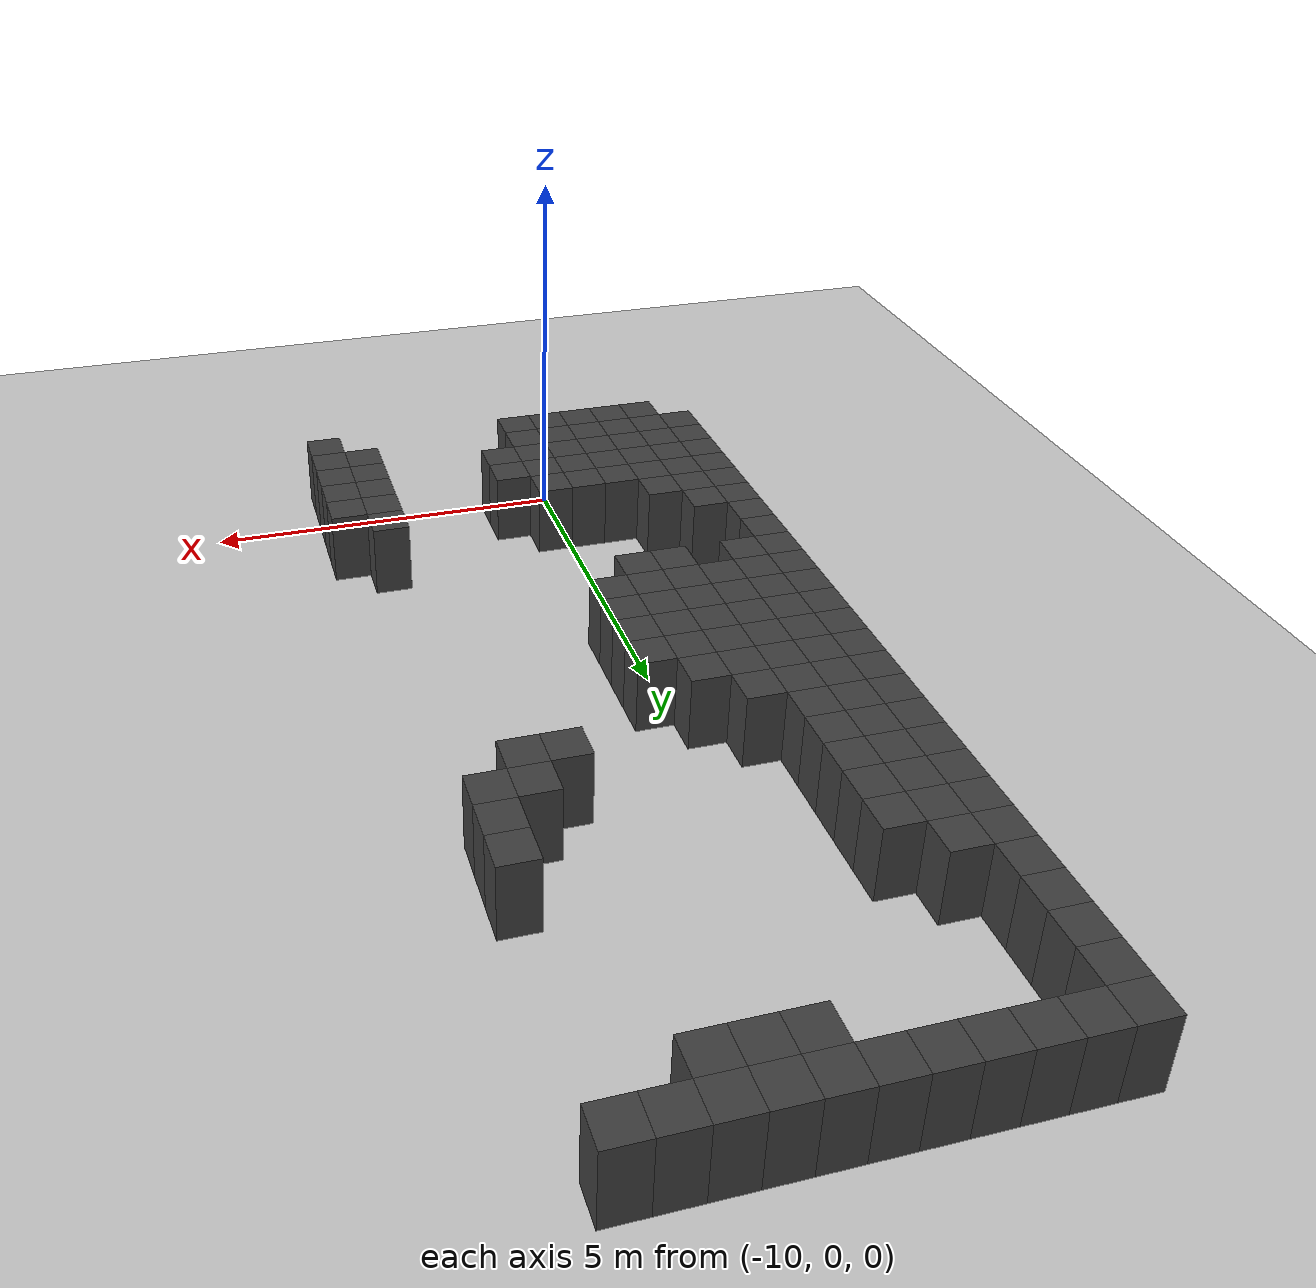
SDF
<sdf version="1.7">
 <world name="map_8843">
  <model name="ground_plane">
   <static>true</static>
   <link name="link">
    <collision name="collision">
     <geometry><plane><normal>0 0 1</normal><size>200 200</size></plane></geometry>
    </collision>
    <visual name="visual">
     <geometry><plane><normal>0 0 1</normal><size>200 200</size></plane></geometry>
     <material><ambient>0.8 0.8 0.8 1</ambient><diffuse>0.8 0.8 0.8 1</diffuse></material>
    </visual>
   </link>
  </model>
  <model name="maze_environment">
   <static>true</static>
   <link name="wall_0">
    <pose>-12.250 12.250 0.500 0 0 0</pose>
    <collision name="col"><geometry><box><size>0.5 0.5 1.0</size></box></geometry></collision>
    <visual name="vis">
     <geometry><box><size>0.5 0.5 1.0</size></box></geometry>
     <material><ambient>0.15 0.15 0.15 1</ambient><diffuse>0.25 0.25 0.25 1</diffuse></material>
    </visual>
   </link>
   <link name="wall_1">
    <pose>-11.750 12.250 0.500 0 0 0</pose>
    <collision name="col"><geometry><box><size>0.5 0.5 1.0</size></box></geometry></collision>
    <visual name="vis">
     <geometry><box><size>0.5 0.5 1.0</size></box></geometry>
     <material><ambient>0.15 0.15 0.15 1</ambient><diffuse>0.25 0.25 0.25 1</diffuse></material>
    </visual>
   </link>
   <link name="wall_2">
    <pose>-11.250 12.250 0.500 0 0 0</pose>
    <collision name="col"><geometry><box><size>0.5 0.5 1.0</size></box></geometry></collision>
    <visual name="vis">
     <geometry><box><size>0.5 0.5 1.0</size></box></geometry>
     <material><ambient>0.15 0.15 0.15 1</ambient><diffuse>0.25 0.25 0.25 1</diffuse></material>
    </visual>
   </link>
   <link name="wall_3">
    <pose>-10.750 12.250 0.500 0 0 0</pose>
    <collision name="col"><geometry><box><size>0.5 0.5 1.0</size></box></geometry></collision>
    <visual name="vis">
     <geometry><box><size>0.5 0.5 1.0</size></box></geometry>
     <material><ambient>0.15 0.15 0.15 1</ambient><diffuse>0.25 0.25 0.25 1</diffuse></material>
    </visual>
   </link>
   <link name="wall_4">
    <pose>-10.250 12.250 0.500 0 0 0</pose>
    <collision name="col"><geometry><box><size>0.5 0.5 1.0</size></box></geometry></collision>
    <visual name="vis">
     <geometry><box><size>0.5 0.5 1.0</size></box></geometry>
     <material><ambient>0.15 0.15 0.15 1</ambient><diffuse>0.25 0.25 0.25 1</diffuse></material>
    </visual>
   </link>
   <link name="wall_5">
    <pose>-9.750 12.250 0.500 0 0 0</pose>
    <collision name="col"><geometry><box><size>0.5 0.5 1.0</size></box></geometry></collision>
    <visual name="vis">
     <geometry><box><size>0.5 0.5 1.0</size></box></geometry>
     <material><ambient>0.15 0.15 0.15 1</ambient><diffuse>0.25 0.25 0.25 1</diffuse></material>
    </visual>
   </link>
   <link name="wall_6">
    <pose>-9.250 12.250 0.500 0 0 0</pose>
    <collision name="col"><geometry><box><size>0.5 0.5 1.0</size></box></geometry></collision>
    <visual name="vis">
     <geometry><box><size>0.5 0.5 1.0</size></box></geometry>
     <material><ambient>0.15 0.15 0.15 1</ambient><diffuse>0.25 0.25 0.25 1</diffuse></material>
    </visual>
   </link>
   <link name="wall_7">
    <pose>-8.750 12.250 0.500 0 0 0</pose>
    <collision name="col"><geometry><box><size>0.5 0.5 1.0</size></box></geometry></collision>
    <visual name="vis">
     <geometry><box><size>0.5 0.5 1.0</size></box></geometry>
     <material><ambient>0.15 0.15 0.15 1</ambient><diffuse>0.25 0.25 0.25 1</diffuse></material>
    </visual>
   </link>
   <link name="wall_8">
    <pose>-8.250 12.250 0.500 0 0 0</pose>
    <collision name="col"><geometry><box><size>0.5 0.5 1.0</size></box></geometry></collision>
    <visual name="vis">
     <geometry><box><size>0.5 0.5 1.0</size></box></geometry>
     <material><ambient>0.15 0.15 0.15 1</ambient><diffuse>0.25 0.25 0.25 1</diffuse></material>
    </visual>
   </link>
   <link name="wall_9">
    <pose>-7.750 12.250 0.500 0 0 0</pose>
    <collision name="col"><geometry><box><size>0.5 0.5 1.0</size></box></geometry></collision>
    <visual name="vis">
     <geometry><box><size>0.5 0.5 1.0</size></box></geometry>
     <material><ambient>0.15 0.15 0.15 1</ambient><diffuse>0.25 0.25 0.25 1</diffuse></material>
    </visual>
   </link>
   <link name="wall_10">
    <pose>-7.250 12.250 0.500 0 0 0</pose>
    <collision name="col"><geometry><box><size>0.5 0.5 1.0</size></box></geometry></collision>
    <visual name="vis">
     <geometry><box><size>0.5 0.5 1.0</size></box></geometry>
     <material><ambient>0.15 0.15 0.15 1</ambient><diffuse>0.25 0.25 0.25 1</diffuse></material>
    </visual>
   </link>
   <link name="wall_50">
    <pose>-12.250 11.750 0.500 0 0 0</pose>
    <collision name="col"><geometry><box><size>0.5 0.5 1.0</size></box></geometry></collision>
    <visual name="vis">
     <geometry><box><size>0.5 0.5 1.0</size></box></geometry>
     <material><ambient>0.15 0.15 0.15 1</ambient><diffuse>0.25 0.25 0.25 1</diffuse></material>
    </visual>
   </link>
   <link name="wall_51">
    <pose>-9.250 11.750 0.500 0 0 0</pose>
    <collision name="col"><geometry><box><size>0.5 0.5 1.0</size></box></geometry></collision>
    <visual name="vis">
     <geometry><box><size>0.5 0.5 1.0</size></box></geometry>
     <material><ambient>0.15 0.15 0.15 1</ambient><diffuse>0.25 0.25 0.25 1</diffuse></material>
    </visual>
   </link>
   <link name="wall_52">
    <pose>-8.750 11.750 0.500 0 0 0</pose>
    <collision name="col"><geometry><box><size>0.5 0.5 1.0</size></box></geometry></collision>
    <visual name="vis">
     <geometry><box><size>0.5 0.5 1.0</size></box></geometry>
     <material><ambient>0.15 0.15 0.15 1</ambient><diffuse>0.25 0.25 0.25 1</diffuse></material>
    </visual>
   </link>
   <link name="wall_53">
    <pose>-8.250 11.750 0.500 0 0 0</pose>
    <collision name="col"><geometry><box><size>0.5 0.5 1.0</size></box></geometry></collision>
    <visual name="vis">
     <geometry><box><size>0.5 0.5 1.0</size></box></geometry>
     <material><ambient>0.15 0.15 0.15 1</ambient><diffuse>0.25 0.25 0.25 1</diffuse></material>
    </visual>
   </link>
   <link name="wall_86">
    <pose>-12.250 11.250 0.500 0 0 0</pose>
    <collision name="col"><geometry><box><size>0.5 0.5 1.0</size></box></geometry></collision>
    <visual name="vis">
     <geometry><box><size>0.5 0.5 1.0</size></box></geometry>
     <material><ambient>0.15 0.15 0.15 1</ambient><diffuse>0.25 0.25 0.25 1</diffuse></material>
    </visual>
   </link>
   <link name="wall_106">
    <pose>-12.250 10.750 0.500 0 0 0</pose>
    <collision name="col"><geometry><box><size>0.5 0.5 1.0</size></box></geometry></collision>
    <visual name="vis">
     <geometry><box><size>0.5 0.5 1.0</size></box></geometry>
     <material><ambient>0.15 0.15 0.15 1</ambient><diffuse>0.25 0.25 0.25 1</diffuse></material>
    </visual>
   </link>
   <link name="wall_123">
    <pose>-12.250 10.250 0.500 0 0 0</pose>
    <collision name="col"><geometry><box><size>0.5 0.5 1.0</size></box></geometry></collision>
    <visual name="vis">
     <geometry><box><size>0.5 0.5 1.0</size></box></geometry>
     <material><ambient>0.15 0.15 0.15 1</ambient><diffuse>0.25 0.25 0.25 1</diffuse></material>
    </visual>
   </link>
   <link name="wall_142">
    <pose>-12.250 9.750 0.500 0 0 0</pose>
    <collision name="col"><geometry><box><size>0.5 0.5 1.0</size></box></geometry></collision>
    <visual name="vis">
     <geometry><box><size>0.5 0.5 1.0</size></box></geometry>
     <material><ambient>0.15 0.15 0.15 1</ambient><diffuse>0.25 0.25 0.25 1</diffuse></material>
    </visual>
   </link>
   <link name="wall_143">
    <pose>-11.750 9.750 0.500 0 0 0</pose>
    <collision name="col"><geometry><box><size>0.5 0.5 1.0</size></box></geometry></collision>
    <visual name="vis">
     <geometry><box><size>0.5 0.5 1.0</size></box></geometry>
     <material><ambient>0.15 0.15 0.15 1</ambient><diffuse>0.25 0.25 0.25 1</diffuse></material>
    </visual>
   </link>
   <link name="wall_167">
    <pose>-12.250 9.250 0.500 0 0 0</pose>
    <collision name="col"><geometry><box><size>0.5 0.5 1.0</size></box></geometry></collision>
    <visual name="vis">
     <geometry><box><size>0.5 0.5 1.0</size></box></geometry>
     <material><ambient>0.15 0.15 0.15 1</ambient><diffuse>0.25 0.25 0.25 1</diffuse></material>
    </visual>
   </link>
   <link name="wall_168">
    <pose>-11.750 9.250 0.500 0 0 0</pose>
    <collision name="col"><geometry><box><size>0.5 0.5 1.0</size></box></geometry></collision>
    <visual name="vis">
     <geometry><box><size>0.5 0.5 1.0</size></box></geometry>
     <material><ambient>0.15 0.15 0.15 1</ambient><diffuse>0.25 0.25 0.25 1</diffuse></material>
    </visual>
   </link>
   <link name="wall_169">
    <pose>-11.250 9.250 0.500 0 0 0</pose>
    <collision name="col"><geometry><box><size>0.5 0.5 1.0</size></box></geometry></collision>
    <visual name="vis">
     <geometry><box><size>0.5 0.5 1.0</size></box></geometry>
     <material><ambient>0.15 0.15 0.15 1</ambient><diffuse>0.25 0.25 0.25 1</diffuse></material>
    </visual>
   </link>
   <link name="wall_188">
    <pose>-12.250 8.750 0.500 0 0 0</pose>
    <collision name="col"><geometry><box><size>0.5 0.5 1.0</size></box></geometry></collision>
    <visual name="vis">
     <geometry><box><size>0.5 0.5 1.0</size></box></geometry>
     <material><ambient>0.15 0.15 0.15 1</ambient><diffuse>0.25 0.25 0.25 1</diffuse></material>
    </visual>
   </link>
   <link name="wall_189">
    <pose>-11.750 8.750 0.500 0 0 0</pose>
    <collision name="col"><geometry><box><size>0.5 0.5 1.0</size></box></geometry></collision>
    <visual name="vis">
     <geometry><box><size>0.5 0.5 1.0</size></box></geometry>
     <material><ambient>0.15 0.15 0.15 1</ambient><diffuse>0.25 0.25 0.25 1</diffuse></material>
    </visual>
   </link>
   <link name="wall_190">
    <pose>-11.250 8.750 0.500 0 0 0</pose>
    <collision name="col"><geometry><box><size>0.5 0.5 1.0</size></box></geometry></collision>
    <visual name="vis">
     <geometry><box><size>0.5 0.5 1.0</size></box></geometry>
     <material><ambient>0.15 0.15 0.15 1</ambient><diffuse>0.25 0.25 0.25 1</diffuse></material>
    </visual>
   </link>
   <link name="wall_191">
    <pose>-7.250 8.750 0.500 0 0 0</pose>
    <collision name="col"><geometry><box><size>0.5 0.5 1.0</size></box></geometry></collision>
    <visual name="vis">
     <geometry><box><size>0.5 0.5 1.0</size></box></geometry>
     <material><ambient>0.15 0.15 0.15 1</ambient><diffuse>0.25 0.25 0.25 1</diffuse></material>
    </visual>
   </link>
   <link name="wall_209">
    <pose>-12.250 8.250 0.500 0 0 0</pose>
    <collision name="col"><geometry><box><size>0.5 0.5 1.0</size></box></geometry></collision>
    <visual name="vis">
     <geometry><box><size>0.5 0.5 1.0</size></box></geometry>
     <material><ambient>0.15 0.15 0.15 1</ambient><diffuse>0.25 0.25 0.25 1</diffuse></material>
    </visual>
   </link>
   <link name="wall_210">
    <pose>-11.750 8.250 0.500 0 0 0</pose>
    <collision name="col"><geometry><box><size>0.5 0.5 1.0</size></box></geometry></collision>
    <visual name="vis">
     <geometry><box><size>0.5 0.5 1.0</size></box></geometry>
     <material><ambient>0.15 0.15 0.15 1</ambient><diffuse>0.25 0.25 0.25 1</diffuse></material>
    </visual>
   </link>
   <link name="wall_211">
    <pose>-11.250 8.250 0.500 0 0 0</pose>
    <collision name="col"><geometry><box><size>0.5 0.5 1.0</size></box></geometry></collision>
    <visual name="vis">
     <geometry><box><size>0.5 0.5 1.0</size></box></geometry>
     <material><ambient>0.15 0.15 0.15 1</ambient><diffuse>0.25 0.25 0.25 1</diffuse></material>
    </visual>
   </link>
   <link name="wall_212">
    <pose>-7.250 8.250 0.500 0 0 0</pose>
    <collision name="col"><geometry><box><size>0.5 0.5 1.0</size></box></geometry></collision>
    <visual name="vis">
     <geometry><box><size>0.5 0.5 1.0</size></box></geometry>
     <material><ambient>0.15 0.15 0.15 1</ambient><diffuse>0.25 0.25 0.25 1</diffuse></material>
    </visual>
   </link>
   <link name="wall_225">
    <pose>-12.250 7.750 0.500 0 0 0</pose>
    <collision name="col"><geometry><box><size>0.5 0.5 1.0</size></box></geometry></collision>
    <visual name="vis">
     <geometry><box><size>0.5 0.5 1.0</size></box></geometry>
     <material><ambient>0.15 0.15 0.15 1</ambient><diffuse>0.25 0.25 0.25 1</diffuse></material>
    </visual>
   </link>
   <link name="wall_226">
    <pose>-11.750 7.750 0.500 0 0 0</pose>
    <collision name="col"><geometry><box><size>0.5 0.5 1.0</size></box></geometry></collision>
    <visual name="vis">
     <geometry><box><size>0.5 0.5 1.0</size></box></geometry>
     <material><ambient>0.15 0.15 0.15 1</ambient><diffuse>0.25 0.25 0.25 1</diffuse></material>
    </visual>
   </link>
   <link name="wall_227">
    <pose>-11.250 7.750 0.500 0 0 0</pose>
    <collision name="col"><geometry><box><size>0.5 0.5 1.0</size></box></geometry></collision>
    <visual name="vis">
     <geometry><box><size>0.5 0.5 1.0</size></box></geometry>
     <material><ambient>0.15 0.15 0.15 1</ambient><diffuse>0.25 0.25 0.25 1</diffuse></material>
    </visual>
   </link>
   <link name="wall_228">
    <pose>-7.750 7.750 0.500 0 0 0</pose>
    <collision name="col"><geometry><box><size>0.5 0.5 1.0</size></box></geometry></collision>
    <visual name="vis">
     <geometry><box><size>0.5 0.5 1.0</size></box></geometry>
     <material><ambient>0.15 0.15 0.15 1</ambient><diffuse>0.25 0.25 0.25 1</diffuse></material>
    </visual>
   </link>
   <link name="wall_229">
    <pose>-7.250 7.750 0.500 0 0 0</pose>
    <collision name="col"><geometry><box><size>0.5 0.5 1.0</size></box></geometry></collision>
    <visual name="vis">
     <geometry><box><size>0.5 0.5 1.0</size></box></geometry>
     <material><ambient>0.15 0.15 0.15 1</ambient><diffuse>0.25 0.25 0.25 1</diffuse></material>
    </visual>
   </link>
   <link name="wall_243">
    <pose>-12.250 7.250 0.500 0 0 0</pose>
    <collision name="col"><geometry><box><size>0.5 0.5 1.0</size></box></geometry></collision>
    <visual name="vis">
     <geometry><box><size>0.5 0.5 1.0</size></box></geometry>
     <material><ambient>0.15 0.15 0.15 1</ambient><diffuse>0.25 0.25 0.25 1</diffuse></material>
    </visual>
   </link>
   <link name="wall_244">
    <pose>-11.750 7.250 0.500 0 0 0</pose>
    <collision name="col"><geometry><box><size>0.5 0.5 1.0</size></box></geometry></collision>
    <visual name="vis">
     <geometry><box><size>0.5 0.5 1.0</size></box></geometry>
     <material><ambient>0.15 0.15 0.15 1</ambient><diffuse>0.25 0.25 0.25 1</diffuse></material>
    </visual>
   </link>
   <link name="wall_245">
    <pose>-11.250 7.250 0.500 0 0 0</pose>
    <collision name="col"><geometry><box><size>0.5 0.5 1.0</size></box></geometry></collision>
    <visual name="vis">
     <geometry><box><size>0.5 0.5 1.0</size></box></geometry>
     <material><ambient>0.15 0.15 0.15 1</ambient><diffuse>0.25 0.25 0.25 1</diffuse></material>
    </visual>
   </link>
   <link name="wall_246">
    <pose>-8.250 7.250 0.500 0 0 0</pose>
    <collision name="col"><geometry><box><size>0.5 0.5 1.0</size></box></geometry></collision>
    <visual name="vis">
     <geometry><box><size>0.5 0.5 1.0</size></box></geometry>
     <material><ambient>0.15 0.15 0.15 1</ambient><diffuse>0.25 0.25 0.25 1</diffuse></material>
    </visual>
   </link>
   <link name="wall_247">
    <pose>-7.750 7.250 0.500 0 0 0</pose>
    <collision name="col"><geometry><box><size>0.5 0.5 1.0</size></box></geometry></collision>
    <visual name="vis">
     <geometry><box><size>0.5 0.5 1.0</size></box></geometry>
     <material><ambient>0.15 0.15 0.15 1</ambient><diffuse>0.25 0.25 0.25 1</diffuse></material>
    </visual>
   </link>
   <link name="wall_259">
    <pose>-12.250 6.750 0.500 0 0 0</pose>
    <collision name="col"><geometry><box><size>0.5 0.5 1.0</size></box></geometry></collision>
    <visual name="vis">
     <geometry><box><size>0.5 0.5 1.0</size></box></geometry>
     <material><ambient>0.15 0.15 0.15 1</ambient><diffuse>0.25 0.25 0.25 1</diffuse></material>
    </visual>
   </link>
   <link name="wall_260">
    <pose>-11.750 6.750 0.500 0 0 0</pose>
    <collision name="col"><geometry><box><size>0.5 0.5 1.0</size></box></geometry></collision>
    <visual name="vis">
     <geometry><box><size>0.5 0.5 1.0</size></box></geometry>
     <material><ambient>0.15 0.15 0.15 1</ambient><diffuse>0.25 0.25 0.25 1</diffuse></material>
    </visual>
   </link>
   <link name="wall_261">
    <pose>-11.250 6.750 0.500 0 0 0</pose>
    <collision name="col"><geometry><box><size>0.5 0.5 1.0</size></box></geometry></collision>
    <visual name="vis">
     <geometry><box><size>0.5 0.5 1.0</size></box></geometry>
     <material><ambient>0.15 0.15 0.15 1</ambient><diffuse>0.25 0.25 0.25 1</diffuse></material>
    </visual>
   </link>
   <link name="wall_262">
    <pose>-10.750 6.750 0.500 0 0 0</pose>
    <collision name="col"><geometry><box><size>0.5 0.5 1.0</size></box></geometry></collision>
    <visual name="vis">
     <geometry><box><size>0.5 0.5 1.0</size></box></geometry>
     <material><ambient>0.15 0.15 0.15 1</ambient><diffuse>0.25 0.25 0.25 1</diffuse></material>
    </visual>
   </link>
   <link name="wall_277">
    <pose>-12.250 6.250 0.500 0 0 0</pose>
    <collision name="col"><geometry><box><size>0.5 0.5 1.0</size></box></geometry></collision>
    <visual name="vis">
     <geometry><box><size>0.5 0.5 1.0</size></box></geometry>
     <material><ambient>0.15 0.15 0.15 1</ambient><diffuse>0.25 0.25 0.25 1</diffuse></material>
    </visual>
   </link>
   <link name="wall_278">
    <pose>-11.750 6.250 0.500 0 0 0</pose>
    <collision name="col"><geometry><box><size>0.5 0.5 1.0</size></box></geometry></collision>
    <visual name="vis">
     <geometry><box><size>0.5 0.5 1.0</size></box></geometry>
     <material><ambient>0.15 0.15 0.15 1</ambient><diffuse>0.25 0.25 0.25 1</diffuse></material>
    </visual>
   </link>
   <link name="wall_279">
    <pose>-11.250 6.250 0.500 0 0 0</pose>
    <collision name="col"><geometry><box><size>0.5 0.5 1.0</size></box></geometry></collision>
    <visual name="vis">
     <geometry><box><size>0.5 0.5 1.0</size></box></geometry>
     <material><ambient>0.15 0.15 0.15 1</ambient><diffuse>0.25 0.25 0.25 1</diffuse></material>
    </visual>
   </link>
   <link name="wall_280">
    <pose>-10.750 6.250 0.500 0 0 0</pose>
    <collision name="col"><geometry><box><size>0.5 0.5 1.0</size></box></geometry></collision>
    <visual name="vis">
     <geometry><box><size>0.5 0.5 1.0</size></box></geometry>
     <material><ambient>0.15 0.15 0.15 1</ambient><diffuse>0.25 0.25 0.25 1</diffuse></material>
    </visual>
   </link>
   <link name="wall_281">
    <pose>-10.250 6.250 0.500 0 0 0</pose>
    <collision name="col"><geometry><box><size>0.5 0.5 1.0</size></box></geometry></collision>
    <visual name="vis">
     <geometry><box><size>0.5 0.5 1.0</size></box></geometry>
     <material><ambient>0.15 0.15 0.15 1</ambient><diffuse>0.25 0.25 0.25 1</diffuse></material>
    </visual>
   </link>
   <link name="wall_299">
    <pose>-12.250 5.750 0.500 0 0 0</pose>
    <collision name="col"><geometry><box><size>0.5 0.5 1.0</size></box></geometry></collision>
    <visual name="vis">
     <geometry><box><size>0.5 0.5 1.0</size></box></geometry>
     <material><ambient>0.15 0.15 0.15 1</ambient><diffuse>0.25 0.25 0.25 1</diffuse></material>
    </visual>
   </link>
   <link name="wall_300">
    <pose>-11.750 5.750 0.500 0 0 0</pose>
    <collision name="col"><geometry><box><size>0.5 0.5 1.0</size></box></geometry></collision>
    <visual name="vis">
     <geometry><box><size>0.5 0.5 1.0</size></box></geometry>
     <material><ambient>0.15 0.15 0.15 1</ambient><diffuse>0.25 0.25 0.25 1</diffuse></material>
    </visual>
   </link>
   <link name="wall_301">
    <pose>-11.250 5.750 0.500 0 0 0</pose>
    <collision name="col"><geometry><box><size>0.5 0.5 1.0</size></box></geometry></collision>
    <visual name="vis">
     <geometry><box><size>0.5 0.5 1.0</size></box></geometry>
     <material><ambient>0.15 0.15 0.15 1</ambient><diffuse>0.25 0.25 0.25 1</diffuse></material>
    </visual>
   </link>
   <link name="wall_302">
    <pose>-10.750 5.750 0.500 0 0 0</pose>
    <collision name="col"><geometry><box><size>0.5 0.5 1.0</size></box></geometry></collision>
    <visual name="vis">
     <geometry><box><size>0.5 0.5 1.0</size></box></geometry>
     <material><ambient>0.15 0.15 0.15 1</ambient><diffuse>0.25 0.25 0.25 1</diffuse></material>
    </visual>
   </link>
   <link name="wall_303">
    <pose>-10.250 5.750 0.500 0 0 0</pose>
    <collision name="col"><geometry><box><size>0.5 0.5 1.0</size></box></geometry></collision>
    <visual name="vis">
     <geometry><box><size>0.5 0.5 1.0</size></box></geometry>
     <material><ambient>0.15 0.15 0.15 1</ambient><diffuse>0.25 0.25 0.25 1</diffuse></material>
    </visual>
   </link>
   <link name="wall_304">
    <pose>-9.750 5.750 0.500 0 0 0</pose>
    <collision name="col"><geometry><box><size>0.5 0.5 1.0</size></box></geometry></collision>
    <visual name="vis">
     <geometry><box><size>0.5 0.5 1.0</size></box></geometry>
     <material><ambient>0.15 0.15 0.15 1</ambient><diffuse>0.25 0.25 0.25 1</diffuse></material>
    </visual>
   </link>
   <link name="wall_318">
    <pose>-12.250 5.250 0.500 0 0 0</pose>
    <collision name="col"><geometry><box><size>0.5 0.5 1.0</size></box></geometry></collision>
    <visual name="vis">
     <geometry><box><size>0.5 0.5 1.0</size></box></geometry>
     <material><ambient>0.15 0.15 0.15 1</ambient><diffuse>0.25 0.25 0.25 1</diffuse></material>
    </visual>
   </link>
   <link name="wall_319">
    <pose>-11.750 5.250 0.500 0 0 0</pose>
    <collision name="col"><geometry><box><size>0.5 0.5 1.0</size></box></geometry></collision>
    <visual name="vis">
     <geometry><box><size>0.5 0.5 1.0</size></box></geometry>
     <material><ambient>0.15 0.15 0.15 1</ambient><diffuse>0.25 0.25 0.25 1</diffuse></material>
    </visual>
   </link>
   <link name="wall_320">
    <pose>-11.250 5.250 0.500 0 0 0</pose>
    <collision name="col"><geometry><box><size>0.5 0.5 1.0</size></box></geometry></collision>
    <visual name="vis">
     <geometry><box><size>0.5 0.5 1.0</size></box></geometry>
     <material><ambient>0.15 0.15 0.15 1</ambient><diffuse>0.25 0.25 0.25 1</diffuse></material>
    </visual>
   </link>
   <link name="wall_321">
    <pose>-10.750 5.250 0.500 0 0 0</pose>
    <collision name="col"><geometry><box><size>0.5 0.5 1.0</size></box></geometry></collision>
    <visual name="vis">
     <geometry><box><size>0.5 0.5 1.0</size></box></geometry>
     <material><ambient>0.15 0.15 0.15 1</ambient><diffuse>0.25 0.25 0.25 1</diffuse></material>
    </visual>
   </link>
   <link name="wall_322">
    <pose>-10.250 5.250 0.500 0 0 0</pose>
    <collision name="col"><geometry><box><size>0.5 0.5 1.0</size></box></geometry></collision>
    <visual name="vis">
     <geometry><box><size>0.5 0.5 1.0</size></box></geometry>
     <material><ambient>0.15 0.15 0.15 1</ambient><diffuse>0.25 0.25 0.25 1</diffuse></material>
    </visual>
   </link>
   <link name="wall_323">
    <pose>-9.750 5.250 0.500 0 0 0</pose>
    <collision name="col"><geometry><box><size>0.5 0.5 1.0</size></box></geometry></collision>
    <visual name="vis">
     <geometry><box><size>0.5 0.5 1.0</size></box></geometry>
     <material><ambient>0.15 0.15 0.15 1</ambient><diffuse>0.25 0.25 0.25 1</diffuse></material>
    </visual>
   </link>
   <link name="wall_330">
    <pose>-12.250 4.750 0.500 0 0 0</pose>
    <collision name="col"><geometry><box><size>0.5 0.5 1.0</size></box></geometry></collision>
    <visual name="vis">
     <geometry><box><size>0.5 0.5 1.0</size></box></geometry>
     <material><ambient>0.15 0.15 0.15 1</ambient><diffuse>0.25 0.25 0.25 1</diffuse></material>
    </visual>
   </link>
   <link name="wall_331">
    <pose>-11.750 4.750 0.500 0 0 0</pose>
    <collision name="col"><geometry><box><size>0.5 0.5 1.0</size></box></geometry></collision>
    <visual name="vis">
     <geometry><box><size>0.5 0.5 1.0</size></box></geometry>
     <material><ambient>0.15 0.15 0.15 1</ambient><diffuse>0.25 0.25 0.25 1</diffuse></material>
    </visual>
   </link>
   <link name="wall_332">
    <pose>-11.250 4.750 0.500 0 0 0</pose>
    <collision name="col"><geometry><box><size>0.5 0.5 1.0</size></box></geometry></collision>
    <visual name="vis">
     <geometry><box><size>0.5 0.5 1.0</size></box></geometry>
     <material><ambient>0.15 0.15 0.15 1</ambient><diffuse>0.25 0.25 0.25 1</diffuse></material>
    </visual>
   </link>
   <link name="wall_333">
    <pose>-10.750 4.750 0.500 0 0 0</pose>
    <collision name="col"><geometry><box><size>0.5 0.5 1.0</size></box></geometry></collision>
    <visual name="vis">
     <geometry><box><size>0.5 0.5 1.0</size></box></geometry>
     <material><ambient>0.15 0.15 0.15 1</ambient><diffuse>0.25 0.25 0.25 1</diffuse></material>
    </visual>
   </link>
   <link name="wall_334">
    <pose>-10.250 4.750 0.500 0 0 0</pose>
    <collision name="col"><geometry><box><size>0.5 0.5 1.0</size></box></geometry></collision>
    <visual name="vis">
     <geometry><box><size>0.5 0.5 1.0</size></box></geometry>
     <material><ambient>0.15 0.15 0.15 1</ambient><diffuse>0.25 0.25 0.25 1</diffuse></material>
    </visual>
   </link>
   <link name="wall_335">
    <pose>-9.750 4.750 0.500 0 0 0</pose>
    <collision name="col"><geometry><box><size>0.5 0.5 1.0</size></box></geometry></collision>
    <visual name="vis">
     <geometry><box><size>0.5 0.5 1.0</size></box></geometry>
     <material><ambient>0.15 0.15 0.15 1</ambient><diffuse>0.25 0.25 0.25 1</diffuse></material>
    </visual>
   </link>
   <link name="wall_343">
    <pose>-12.250 4.250 0.500 0 0 0</pose>
    <collision name="col"><geometry><box><size>0.5 0.5 1.0</size></box></geometry></collision>
    <visual name="vis">
     <geometry><box><size>0.5 0.5 1.0</size></box></geometry>
     <material><ambient>0.15 0.15 0.15 1</ambient><diffuse>0.25 0.25 0.25 1</diffuse></material>
    </visual>
   </link>
   <link name="wall_344">
    <pose>-11.750 4.250 0.500 0 0 0</pose>
    <collision name="col"><geometry><box><size>0.5 0.5 1.0</size></box></geometry></collision>
    <visual name="vis">
     <geometry><box><size>0.5 0.5 1.0</size></box></geometry>
     <material><ambient>0.15 0.15 0.15 1</ambient><diffuse>0.25 0.25 0.25 1</diffuse></material>
    </visual>
   </link>
   <link name="wall_345">
    <pose>-11.250 4.250 0.500 0 0 0</pose>
    <collision name="col"><geometry><box><size>0.5 0.5 1.0</size></box></geometry></collision>
    <visual name="vis">
     <geometry><box><size>0.5 0.5 1.0</size></box></geometry>
     <material><ambient>0.15 0.15 0.15 1</ambient><diffuse>0.25 0.25 0.25 1</diffuse></material>
    </visual>
   </link>
   <link name="wall_346">
    <pose>-10.750 4.250 0.500 0 0 0</pose>
    <collision name="col"><geometry><box><size>0.5 0.5 1.0</size></box></geometry></collision>
    <visual name="vis">
     <geometry><box><size>0.5 0.5 1.0</size></box></geometry>
     <material><ambient>0.15 0.15 0.15 1</ambient><diffuse>0.25 0.25 0.25 1</diffuse></material>
    </visual>
   </link>
   <link name="wall_347">
    <pose>-10.250 4.250 0.500 0 0 0</pose>
    <collision name="col"><geometry><box><size>0.5 0.5 1.0</size></box></geometry></collision>
    <visual name="vis">
     <geometry><box><size>0.5 0.5 1.0</size></box></geometry>
     <material><ambient>0.15 0.15 0.15 1</ambient><diffuse>0.25 0.25 0.25 1</diffuse></material>
    </visual>
   </link>
   <link name="wall_348">
    <pose>-9.750 4.250 0.500 0 0 0</pose>
    <collision name="col"><geometry><box><size>0.5 0.5 1.0</size></box></geometry></collision>
    <visual name="vis">
     <geometry><box><size>0.5 0.5 1.0</size></box></geometry>
     <material><ambient>0.15 0.15 0.15 1</ambient><diffuse>0.25 0.25 0.25 1</diffuse></material>
    </visual>
   </link>
   <link name="wall_355">
    <pose>-12.250 3.750 0.500 0 0 0</pose>
    <collision name="col"><geometry><box><size>0.5 0.5 1.0</size></box></geometry></collision>
    <visual name="vis">
     <geometry><box><size>0.5 0.5 1.0</size></box></geometry>
     <material><ambient>0.15 0.15 0.15 1</ambient><diffuse>0.25 0.25 0.25 1</diffuse></material>
    </visual>
   </link>
   <link name="wall_356">
    <pose>-11.750 3.750 0.500 0 0 0</pose>
    <collision name="col"><geometry><box><size>0.5 0.5 1.0</size></box></geometry></collision>
    <visual name="vis">
     <geometry><box><size>0.5 0.5 1.0</size></box></geometry>
     <material><ambient>0.15 0.15 0.15 1</ambient><diffuse>0.25 0.25 0.25 1</diffuse></material>
    </visual>
   </link>
   <link name="wall_357">
    <pose>-10.750 3.750 0.500 0 0 0</pose>
    <collision name="col"><geometry><box><size>0.5 0.5 1.0</size></box></geometry></collision>
    <visual name="vis">
     <geometry><box><size>0.5 0.5 1.0</size></box></geometry>
     <material><ambient>0.15 0.15 0.15 1</ambient><diffuse>0.25 0.25 0.25 1</diffuse></material>
    </visual>
   </link>
   <link name="wall_358">
    <pose>-10.250 3.750 0.500 0 0 0</pose>
    <collision name="col"><geometry><box><size>0.5 0.5 1.0</size></box></geometry></collision>
    <visual name="vis">
     <geometry><box><size>0.5 0.5 1.0</size></box></geometry>
     <material><ambient>0.15 0.15 0.15 1</ambient><diffuse>0.25 0.25 0.25 1</diffuse></material>
    </visual>
   </link>
   <link name="wall_369">
    <pose>-12.250 3.250 0.500 0 0 0</pose>
    <collision name="col"><geometry><box><size>0.5 0.5 1.0</size></box></geometry></collision>
    <visual name="vis">
     <geometry><box><size>0.5 0.5 1.0</size></box></geometry>
     <material><ambient>0.15 0.15 0.15 1</ambient><diffuse>0.25 0.25 0.25 1</diffuse></material>
    </visual>
   </link>
   <link name="wall_381">
    <pose>-12.250 2.750 0.500 0 0 0</pose>
    <collision name="col"><geometry><box><size>0.5 0.5 1.0</size></box></geometry></collision>
    <visual name="vis">
     <geometry><box><size>0.5 0.5 1.0</size></box></geometry>
     <material><ambient>0.15 0.15 0.15 1</ambient><diffuse>0.25 0.25 0.25 1</diffuse></material>
    </visual>
   </link>
   <link name="wall_395">
    <pose>-12.250 2.250 0.500 0 0 0</pose>
    <collision name="col"><geometry><box><size>0.5 0.5 1.0</size></box></geometry></collision>
    <visual name="vis">
     <geometry><box><size>0.5 0.5 1.0</size></box></geometry>
     <material><ambient>0.15 0.15 0.15 1</ambient><diffuse>0.25 0.25 0.25 1</diffuse></material>
    </visual>
   </link>
   <link name="wall_396">
    <pose>-11.750 2.250 0.500 0 0 0</pose>
    <collision name="col"><geometry><box><size>0.5 0.5 1.0</size></box></geometry></collision>
    <visual name="vis">
     <geometry><box><size>0.5 0.5 1.0</size></box></geometry>
     <material><ambient>0.15 0.15 0.15 1</ambient><diffuse>0.25 0.25 0.25 1</diffuse></material>
    </visual>
   </link>
   <link name="wall_410">
    <pose>-12.250 1.750 0.500 0 0 0</pose>
    <collision name="col"><geometry><box><size>0.5 0.5 1.0</size></box></geometry></collision>
    <visual name="vis">
     <geometry><box><size>0.5 0.5 1.0</size></box></geometry>
     <material><ambient>0.15 0.15 0.15 1</ambient><diffuse>0.25 0.25 0.25 1</diffuse></material>
    </visual>
   </link>
   <link name="wall_411">
    <pose>-11.750 1.750 0.500 0 0 0</pose>
    <collision name="col"><geometry><box><size>0.5 0.5 1.0</size></box></geometry></collision>
    <visual name="vis">
     <geometry><box><size>0.5 0.5 1.0</size></box></geometry>
     <material><ambient>0.15 0.15 0.15 1</ambient><diffuse>0.25 0.25 0.25 1</diffuse></material>
    </visual>
   </link>
   <link name="wall_412">
    <pose>-11.250 1.750 0.500 0 0 0</pose>
    <collision name="col"><geometry><box><size>0.5 0.5 1.0</size></box></geometry></collision>
    <visual name="vis">
     <geometry><box><size>0.5 0.5 1.0</size></box></geometry>
     <material><ambient>0.15 0.15 0.15 1</ambient><diffuse>0.25 0.25 0.25 1</diffuse></material>
    </visual>
   </link>
   <link name="wall_413">
    <pose>-7.250 1.750 0.500 0 0 0</pose>
    <collision name="col"><geometry><box><size>0.5 0.5 1.0</size></box></geometry></collision>
    <visual name="vis">
     <geometry><box><size>0.5 0.5 1.0</size></box></geometry>
     <material><ambient>0.15 0.15 0.15 1</ambient><diffuse>0.25 0.25 0.25 1</diffuse></material>
    </visual>
   </link>
   <link name="wall_428">
    <pose>-12.250 1.250 0.500 0 0 0</pose>
    <collision name="col"><geometry><box><size>0.5 0.5 1.0</size></box></geometry></collision>
    <visual name="vis">
     <geometry><box><size>0.5 0.5 1.0</size></box></geometry>
     <material><ambient>0.15 0.15 0.15 1</ambient><diffuse>0.25 0.25 0.25 1</diffuse></material>
    </visual>
   </link>
   <link name="wall_429">
    <pose>-11.750 1.250 0.500 0 0 0</pose>
    <collision name="col"><geometry><box><size>0.5 0.5 1.0</size></box></geometry></collision>
    <visual name="vis">
     <geometry><box><size>0.5 0.5 1.0</size></box></geometry>
     <material><ambient>0.15 0.15 0.15 1</ambient><diffuse>0.25 0.25 0.25 1</diffuse></material>
    </visual>
   </link>
   <link name="wall_430">
    <pose>-11.250 1.250 0.500 0 0 0</pose>
    <collision name="col"><geometry><box><size>0.5 0.5 1.0</size></box></geometry></collision>
    <visual name="vis">
     <geometry><box><size>0.5 0.5 1.0</size></box></geometry>
     <material><ambient>0.15 0.15 0.15 1</ambient><diffuse>0.25 0.25 0.25 1</diffuse></material>
    </visual>
   </link>
   <link name="wall_431">
    <pose>-10.750 1.250 0.500 0 0 0</pose>
    <collision name="col"><geometry><box><size>0.5 0.5 1.0</size></box></geometry></collision>
    <visual name="vis">
     <geometry><box><size>0.5 0.5 1.0</size></box></geometry>
     <material><ambient>0.15 0.15 0.15 1</ambient><diffuse>0.25 0.25 0.25 1</diffuse></material>
    </visual>
   </link>
   <link name="wall_432">
    <pose>-10.250 1.250 0.500 0 0 0</pose>
    <collision name="col"><geometry><box><size>0.5 0.5 1.0</size></box></geometry></collision>
    <visual name="vis">
     <geometry><box><size>0.5 0.5 1.0</size></box></geometry>
     <material><ambient>0.15 0.15 0.15 1</ambient><diffuse>0.25 0.25 0.25 1</diffuse></material>
    </visual>
   </link>
   <link name="wall_433">
    <pose>-9.750 1.250 0.500 0 0 0</pose>
    <collision name="col"><geometry><box><size>0.5 0.5 1.0</size></box></geometry></collision>
    <visual name="vis">
     <geometry><box><size>0.5 0.5 1.0</size></box></geometry>
     <material><ambient>0.15 0.15 0.15 1</ambient><diffuse>0.25 0.25 0.25 1</diffuse></material>
    </visual>
   </link>
   <link name="wall_434">
    <pose>-7.250 1.250 0.500 0 0 0</pose>
    <collision name="col"><geometry><box><size>0.5 0.5 1.0</size></box></geometry></collision>
    <visual name="vis">
     <geometry><box><size>0.5 0.5 1.0</size></box></geometry>
     <material><ambient>0.15 0.15 0.15 1</ambient><diffuse>0.25 0.25 0.25 1</diffuse></material>
    </visual>
   </link>
   <link name="wall_435">
    <pose>-6.750 1.250 0.500 0 0 0</pose>
    <collision name="col"><geometry><box><size>0.5 0.5 1.0</size></box></geometry></collision>
    <visual name="vis">
     <geometry><box><size>0.5 0.5 1.0</size></box></geometry>
     <material><ambient>0.15 0.15 0.15 1</ambient><diffuse>0.25 0.25 0.25 1</diffuse></material>
    </visual>
   </link>
   <link name="wall_451">
    <pose>-12.250 0.750 0.500 0 0 0</pose>
    <collision name="col"><geometry><box><size>0.5 0.5 1.0</size></box></geometry></collision>
    <visual name="vis">
     <geometry><box><size>0.5 0.5 1.0</size></box></geometry>
     <material><ambient>0.15 0.15 0.15 1</ambient><diffuse>0.25 0.25 0.25 1</diffuse></material>
    </visual>
   </link>
   <link name="wall_452">
    <pose>-11.750 0.750 0.500 0 0 0</pose>
    <collision name="col"><geometry><box><size>0.5 0.5 1.0</size></box></geometry></collision>
    <visual name="vis">
     <geometry><box><size>0.5 0.5 1.0</size></box></geometry>
     <material><ambient>0.15 0.15 0.15 1</ambient><diffuse>0.25 0.25 0.25 1</diffuse></material>
    </visual>
   </link>
   <link name="wall_453">
    <pose>-11.250 0.750 0.500 0 0 0</pose>
    <collision name="col"><geometry><box><size>0.5 0.5 1.0</size></box></geometry></collision>
    <visual name="vis">
     <geometry><box><size>0.5 0.5 1.0</size></box></geometry>
     <material><ambient>0.15 0.15 0.15 1</ambient><diffuse>0.25 0.25 0.25 1</diffuse></material>
    </visual>
   </link>
   <link name="wall_454">
    <pose>-10.750 0.750 0.500 0 0 0</pose>
    <collision name="col"><geometry><box><size>0.5 0.5 1.0</size></box></geometry></collision>
    <visual name="vis">
     <geometry><box><size>0.5 0.5 1.0</size></box></geometry>
     <material><ambient>0.15 0.15 0.15 1</ambient><diffuse>0.25 0.25 0.25 1</diffuse></material>
    </visual>
   </link>
   <link name="wall_455">
    <pose>-10.250 0.750 0.500 0 0 0</pose>
    <collision name="col"><geometry><box><size>0.5 0.5 1.0</size></box></geometry></collision>
    <visual name="vis">
     <geometry><box><size>0.5 0.5 1.0</size></box></geometry>
     <material><ambient>0.15 0.15 0.15 1</ambient><diffuse>0.25 0.25 0.25 1</diffuse></material>
    </visual>
   </link>
   <link name="wall_456">
    <pose>-9.750 0.750 0.500 0 0 0</pose>
    <collision name="col"><geometry><box><size>0.5 0.5 1.0</size></box></geometry></collision>
    <visual name="vis">
     <geometry><box><size>0.5 0.5 1.0</size></box></geometry>
     <material><ambient>0.15 0.15 0.15 1</ambient><diffuse>0.25 0.25 0.25 1</diffuse></material>
    </visual>
   </link>
   <link name="wall_457">
    <pose>-9.250 0.750 0.500 0 0 0</pose>
    <collision name="col"><geometry><box><size>0.5 0.5 1.0</size></box></geometry></collision>
    <visual name="vis">
     <geometry><box><size>0.5 0.5 1.0</size></box></geometry>
     <material><ambient>0.15 0.15 0.15 1</ambient><diffuse>0.25 0.25 0.25 1</diffuse></material>
    </visual>
   </link>
   <link name="wall_458">
    <pose>-7.250 0.750 0.500 0 0 0</pose>
    <collision name="col"><geometry><box><size>0.5 0.5 1.0</size></box></geometry></collision>
    <visual name="vis">
     <geometry><box><size>0.5 0.5 1.0</size></box></geometry>
     <material><ambient>0.15 0.15 0.15 1</ambient><diffuse>0.25 0.25 0.25 1</diffuse></material>
    </visual>
   </link>
   <link name="wall_459">
    <pose>-6.750 0.750 0.500 0 0 0</pose>
    <collision name="col"><geometry><box><size>0.5 0.5 1.0</size></box></geometry></collision>
    <visual name="vis">
     <geometry><box><size>0.5 0.5 1.0</size></box></geometry>
     <material><ambient>0.15 0.15 0.15 1</ambient><diffuse>0.25 0.25 0.25 1</diffuse></material>
    </visual>
   </link>
   <link name="wall_473">
    <pose>-12.250 0.250 0.500 0 0 0</pose>
    <collision name="col"><geometry><box><size>0.5 0.5 1.0</size></box></geometry></collision>
    <visual name="vis">
     <geometry><box><size>0.5 0.5 1.0</size></box></geometry>
     <material><ambient>0.15 0.15 0.15 1</ambient><diffuse>0.25 0.25 0.25 1</diffuse></material>
    </visual>
   </link>
   <link name="wall_474">
    <pose>-11.750 0.250 0.500 0 0 0</pose>
    <collision name="col"><geometry><box><size>0.5 0.5 1.0</size></box></geometry></collision>
    <visual name="vis">
     <geometry><box><size>0.5 0.5 1.0</size></box></geometry>
     <material><ambient>0.15 0.15 0.15 1</ambient><diffuse>0.25 0.25 0.25 1</diffuse></material>
    </visual>
   </link>
   <link name="wall_475">
    <pose>-11.250 0.250 0.500 0 0 0</pose>
    <collision name="col"><geometry><box><size>0.5 0.5 1.0</size></box></geometry></collision>
    <visual name="vis">
     <geometry><box><size>0.5 0.5 1.0</size></box></geometry>
     <material><ambient>0.15 0.15 0.15 1</ambient><diffuse>0.25 0.25 0.25 1</diffuse></material>
    </visual>
   </link>
   <link name="wall_476">
    <pose>-10.750 0.250 0.500 0 0 0</pose>
    <collision name="col"><geometry><box><size>0.5 0.5 1.0</size></box></geometry></collision>
    <visual name="vis">
     <geometry><box><size>0.5 0.5 1.0</size></box></geometry>
     <material><ambient>0.15 0.15 0.15 1</ambient><diffuse>0.25 0.25 0.25 1</diffuse></material>
    </visual>
   </link>
   <link name="wall_477">
    <pose>-10.250 0.250 0.500 0 0 0</pose>
    <collision name="col"><geometry><box><size>0.5 0.5 1.0</size></box></geometry></collision>
    <visual name="vis">
     <geometry><box><size>0.5 0.5 1.0</size></box></geometry>
     <material><ambient>0.15 0.15 0.15 1</ambient><diffuse>0.25 0.25 0.25 1</diffuse></material>
    </visual>
   </link>
   <link name="wall_478">
    <pose>-9.750 0.250 0.500 0 0 0</pose>
    <collision name="col"><geometry><box><size>0.5 0.5 1.0</size></box></geometry></collision>
    <visual name="vis">
     <geometry><box><size>0.5 0.5 1.0</size></box></geometry>
     <material><ambient>0.15 0.15 0.15 1</ambient><diffuse>0.25 0.25 0.25 1</diffuse></material>
    </visual>
   </link>
   <link name="wall_479">
    <pose>-9.250 0.250 0.500 0 0 0</pose>
    <collision name="col"><geometry><box><size>0.5 0.5 1.0</size></box></geometry></collision>
    <visual name="vis">
     <geometry><box><size>0.5 0.5 1.0</size></box></geometry>
     <material><ambient>0.15 0.15 0.15 1</ambient><diffuse>0.25 0.25 0.25 1</diffuse></material>
    </visual>
   </link>
   <link name="wall_480">
    <pose>-7.250 0.250 0.500 0 0 0</pose>
    <collision name="col"><geometry><box><size>0.5 0.5 1.0</size></box></geometry></collision>
    <visual name="vis">
     <geometry><box><size>0.5 0.5 1.0</size></box></geometry>
     <material><ambient>0.15 0.15 0.15 1</ambient><diffuse>0.25 0.25 0.25 1</diffuse></material>
    </visual>
   </link>
   <link name="wall_481">
    <pose>-6.750 0.250 0.500 0 0 0</pose>
    <collision name="col"><geometry><box><size>0.5 0.5 1.0</size></box></geometry></collision>
    <visual name="vis">
     <geometry><box><size>0.5 0.5 1.0</size></box></geometry>
     <material><ambient>0.15 0.15 0.15 1</ambient><diffuse>0.25 0.25 0.25 1</diffuse></material>
    </visual>
   </link>
   <link name="wall_495">
    <pose>-12.250 -0.250 0.500 0 0 0</pose>
    <collision name="col"><geometry><box><size>0.5 0.5 1.0</size></box></geometry></collision>
    <visual name="vis">
     <geometry><box><size>0.5 0.5 1.0</size></box></geometry>
     <material><ambient>0.15 0.15 0.15 1</ambient><diffuse>0.25 0.25 0.25 1</diffuse></material>
    </visual>
   </link>
   <link name="wall_496">
    <pose>-11.750 -0.250 0.500 0 0 0</pose>
    <collision name="col"><geometry><box><size>0.5 0.5 1.0</size></box></geometry></collision>
    <visual name="vis">
     <geometry><box><size>0.5 0.5 1.0</size></box></geometry>
     <material><ambient>0.15 0.15 0.15 1</ambient><diffuse>0.25 0.25 0.25 1</diffuse></material>
    </visual>
   </link>
   <link name="wall_497">
    <pose>-11.250 -0.250 0.500 0 0 0</pose>
    <collision name="col"><geometry><box><size>0.5 0.5 1.0</size></box></geometry></collision>
    <visual name="vis">
     <geometry><box><size>0.5 0.5 1.0</size></box></geometry>
     <material><ambient>0.15 0.15 0.15 1</ambient><diffuse>0.25 0.25 0.25 1</diffuse></material>
    </visual>
   </link>
   <link name="wall_498">
    <pose>-10.750 -0.250 0.500 0 0 0</pose>
    <collision name="col"><geometry><box><size>0.5 0.5 1.0</size></box></geometry></collision>
    <visual name="vis">
     <geometry><box><size>0.5 0.5 1.0</size></box></geometry>
     <material><ambient>0.15 0.15 0.15 1</ambient><diffuse>0.25 0.25 0.25 1</diffuse></material>
    </visual>
   </link>
   <link name="wall_499">
    <pose>-10.250 -0.250 0.500 0 0 0</pose>
    <collision name="col"><geometry><box><size>0.5 0.5 1.0</size></box></geometry></collision>
    <visual name="vis">
     <geometry><box><size>0.5 0.5 1.0</size></box></geometry>
     <material><ambient>0.15 0.15 0.15 1</ambient><diffuse>0.25 0.25 0.25 1</diffuse></material>
    </visual>
   </link>
   <link name="wall_500">
    <pose>-9.750 -0.250 0.500 0 0 0</pose>
    <collision name="col"><geometry><box><size>0.5 0.5 1.0</size></box></geometry></collision>
    <visual name="vis">
     <geometry><box><size>0.5 0.5 1.0</size></box></geometry>
     <material><ambient>0.15 0.15 0.15 1</ambient><diffuse>0.25 0.25 0.25 1</diffuse></material>
    </visual>
   </link>
   <link name="wall_501">
    <pose>-7.250 -0.250 0.500 0 0 0</pose>
    <collision name="col"><geometry><box><size>0.5 0.5 1.0</size></box></geometry></collision>
    <visual name="vis">
     <geometry><box><size>0.5 0.5 1.0</size></box></geometry>
     <material><ambient>0.15 0.15 0.15 1</ambient><diffuse>0.25 0.25 0.25 1</diffuse></material>
    </visual>
   </link>
   <link name="wall_502">
    <pose>-6.750 -0.250 0.500 0 0 0</pose>
    <collision name="col"><geometry><box><size>0.5 0.5 1.0</size></box></geometry></collision>
    <visual name="vis">
     <geometry><box><size>0.5 0.5 1.0</size></box></geometry>
     <material><ambient>0.15 0.15 0.15 1</ambient><diffuse>0.25 0.25 0.25 1</diffuse></material>
    </visual>
   </link>
   <link name="wall_517">
    <pose>-11.750 -0.750 0.500 0 0 0</pose>
    <collision name="col"><geometry><box><size>0.5 0.5 1.0</size></box></geometry></collision>
    <visual name="vis">
     <geometry><box><size>0.5 0.5 1.0</size></box></geometry>
     <material><ambient>0.15 0.15 0.15 1</ambient><diffuse>0.25 0.25 0.25 1</diffuse></material>
    </visual>
   </link>
   <link name="wall_518">
    <pose>-11.250 -0.750 0.500 0 0 0</pose>
    <collision name="col"><geometry><box><size>0.5 0.5 1.0</size></box></geometry></collision>
    <visual name="vis">
     <geometry><box><size>0.5 0.5 1.0</size></box></geometry>
     <material><ambient>0.15 0.15 0.15 1</ambient><diffuse>0.25 0.25 0.25 1</diffuse></material>
    </visual>
   </link>
   <link name="wall_519">
    <pose>-10.750 -0.750 0.500 0 0 0</pose>
    <collision name="col"><geometry><box><size>0.5 0.5 1.0</size></box></geometry></collision>
    <visual name="vis">
     <geometry><box><size>0.5 0.5 1.0</size></box></geometry>
     <material><ambient>0.15 0.15 0.15 1</ambient><diffuse>0.25 0.25 0.25 1</diffuse></material>
    </visual>
   </link>
   <link name="wall_520">
    <pose>-10.250 -0.750 0.500 0 0 0</pose>
    <collision name="col"><geometry><box><size>0.5 0.5 1.0</size></box></geometry></collision>
    <visual name="vis">
     <geometry><box><size>0.5 0.5 1.0</size></box></geometry>
     <material><ambient>0.15 0.15 0.15 1</ambient><diffuse>0.25 0.25 0.25 1</diffuse></material>
    </visual>
   </link>
   <link name="wall_521">
    <pose>-9.750 -0.750 0.500 0 0 0</pose>
    <collision name="col"><geometry><box><size>0.5 0.5 1.0</size></box></geometry></collision>
    <visual name="vis">
     <geometry><box><size>0.5 0.5 1.0</size></box></geometry>
     <material><ambient>0.15 0.15 0.15 1</ambient><diffuse>0.25 0.25 0.25 1</diffuse></material>
    </visual>
   </link>
   <link name="wall_522">
    <pose>-6.750 -0.750 0.500 0 0 0</pose>
    <collision name="col"><geometry><box><size>0.5 0.5 1.0</size></box></geometry></collision>
    <visual name="vis">
     <geometry><box><size>0.5 0.5 1.0</size></box></geometry>
     <material><ambient>0.15 0.15 0.15 1</ambient><diffuse>0.25 0.25 0.25 1</diffuse></material>
    </visual>
   </link>
   <link name="start_zone">
    <pose>-11.750 11.750 0.005 0 0 0</pose>
    <visual name="vis">
     <geometry><box><size>0.45 0.45 0.01</size></box></geometry>
     <material>
      <ambient>0.0 1.0 0.0 1</ambient>
      <diffuse>0.0 1.0 0.0 1</diffuse>
      <emissive>0.00 0.60 0.00 1</emissive>
     </material>
    </visual>
   </link>
  </model>
 </world>
</sdf>
